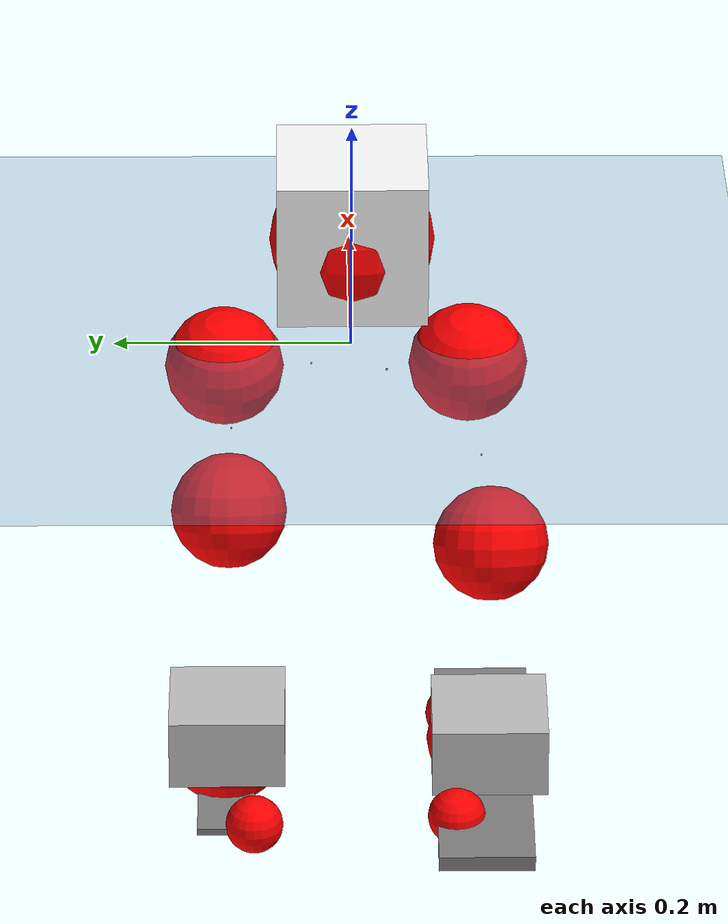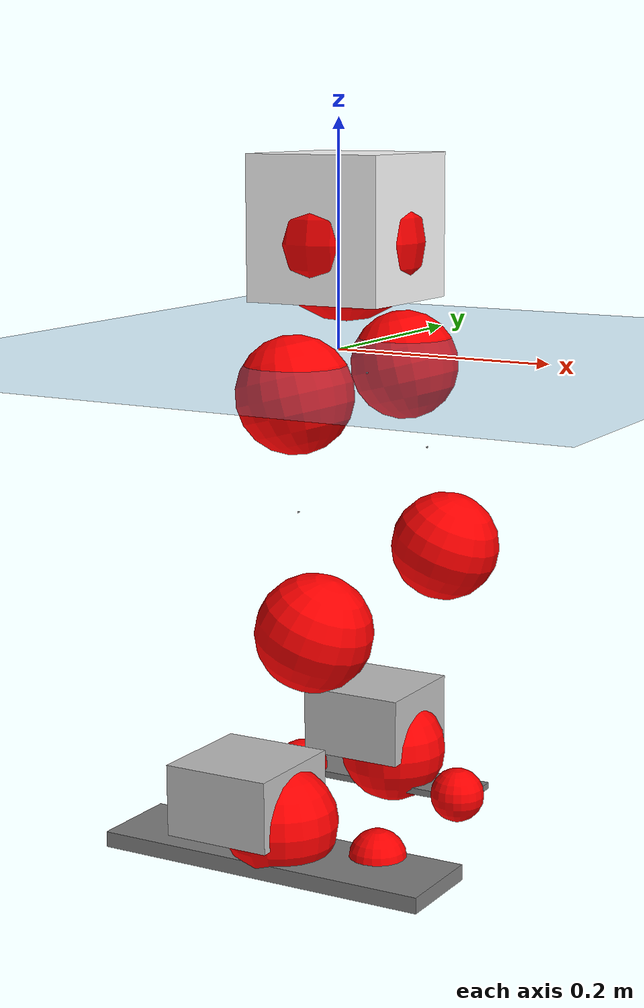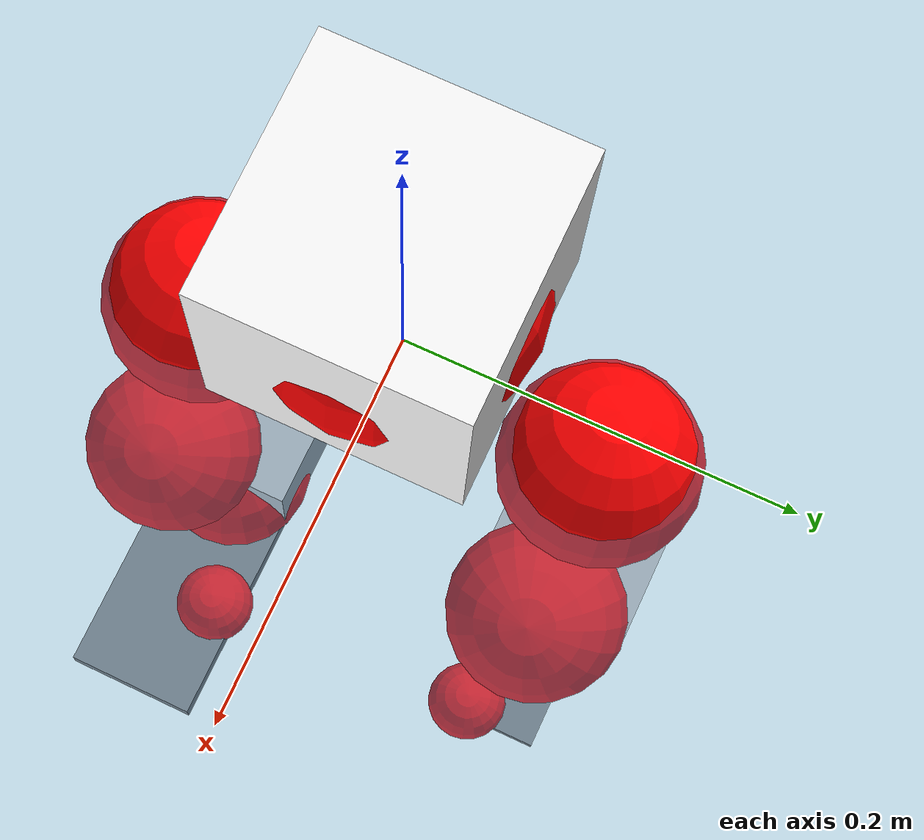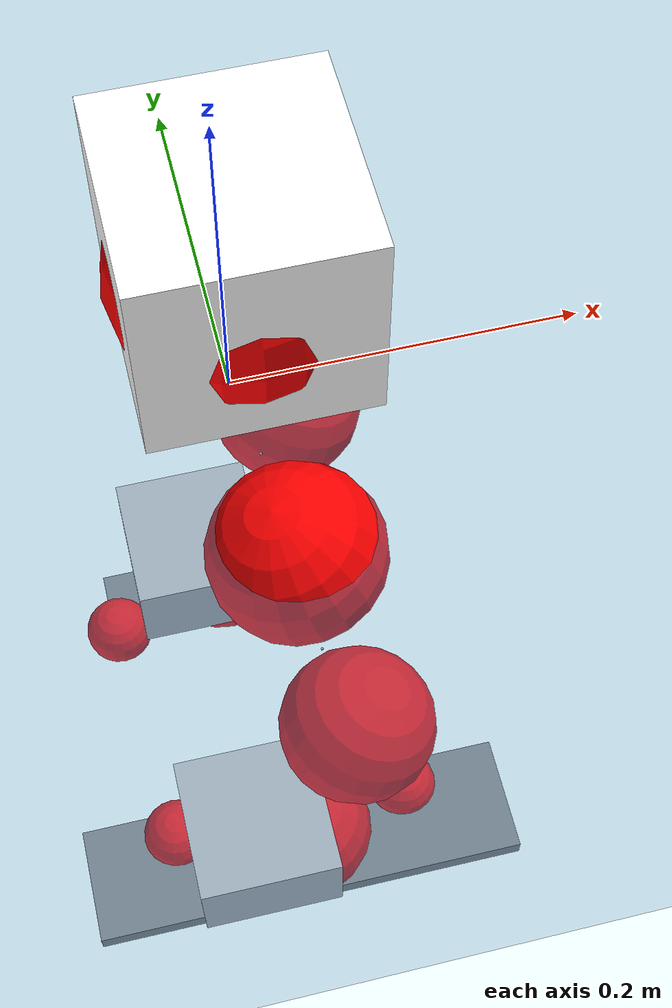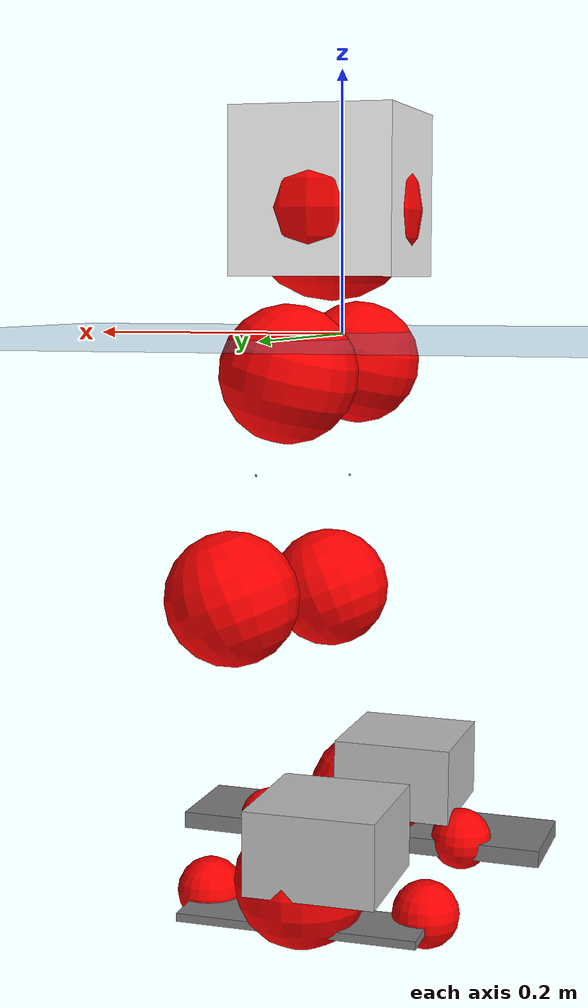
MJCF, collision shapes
<mujoco model="pi_12dof_release_v1">
  <compiler angle="radian" assetdir="assets" balanceinertia="true" inertiafromgeom="false"/>

  <option timestep="0.005" density="1.2" viscosity="2e-05"/>

  <size nkey="1"/>

  <visual>
    <quality shadowsize="8192"/>
    <map shadowclip="0.5"/>
  </visual>

  <default>
    <default class="/">
      <joint armature="0.01" damping="0.01" frictionloss="0.01"/>
      <geom contype="0" conaffinity="0" group="1" solref="-1000 -80"/>
      <site size="0.01 0.005 0.005" group="5"/>
      <general forcelimited="true" biastype="affine" gainprm="20" biasprm="0 -20 -0.5"/>
      <default class="foot">
        <geom size="0.0845 0.036 0.005" type="box" condim="6" group="4" priority="1" friction="0.9 0.2 0.2" solimp="0.015 1 0.005"/>
      </default>
      <default class="reward_collision_sphere">
        <geom group="5" rgba="1 0 0 1"/>
      </default>
    </default>
  </default>

  <asset>
    <texture type="skybox" colorspace="auto" name="//unnamed_texture_0" builtin="gradient" rgb1="0.95 0.95 0.95" rgb2="0.95 0.95 0.95" width="100" height="600"/>
    <texture type="2d" colorspace="auto" name="texplane" builtin="checker" rgb1="0.345 0.575 0.748" rgb2="0.345 0.575 0.748" markrgb="1 1 1" width="512" height="512"/>
    <material name="MatPlane" class="/" texture="texplane" texuniform="true" texrepeat="2 2" specular="0.9"/>
    <mesh name="baselink_1" class="/" file="baselink_1.STL"/>
    <mesh name="r_hip_pitch_link" class="/" file="r_hip_pitch_link.STL"/>
    <mesh name="r_hip_roll_link" class="/" file="r_hip_roll_link.STL"/>
    <mesh name="r_thigh_link" class="/" file="r_thigh_link.STL"/>
    <mesh name="r_calf_link" class="/" file="r_calf_link.STL"/>
    <mesh name="r_ankle_pitch_link" class="/" file="r_ankle_pitch_link.STL"/>
    <mesh name="r_ankle_roll_link" class="/" file="r_ankle_roll_link.STL"/>
    <mesh name="l_hip_pitch_link" class="/" file="l_hip_pitch_link.STL"/>
    <mesh name="l_hip_roll_link" class="/" file="l_hip_roll_link.STL"/>
    <mesh name="l_thigh_link" class="/" file="l_thigh_link.STL"/>
    <mesh name="l_calf_link" class="/" file="l_calf_link.STL"/>
    <mesh name="l_ankle_pitch_link" class="/" file="l_ankle_pitch_link.STL"/>
    <mesh name="l_ankle_roll_link" class="/" file="l_ankle_roll_link.STL"/>
  </asset>

  <worldbody>
    <geom name="floor" class="/" size="100 100 0.125" type="plane" group="0" material="MatPlane"/>
    <light name="toplight_shadow" class="/" pos="0 0 5" dir="0.0990148 0.0990148 -0.990148" type="directional" ambient="0.04 0.04 0.04" diffuse="0.55 0.55 0.55" specular="0.12 0.12 0.12"/>
    <light name="toplight_fill" class="/" pos="0 0 5" dir="0.0990148 0.0990148 -0.990148" type="directional" castshadow="false" ambient="0.04 0.04 0.04" diffuse="0.3 0.3 0.3" specular="0.08 0.08 0.08"/>
    <body name="trunk" pos="0.00843166 -0.000815426 0.00585627" quat="0.999993 -0.00254284 -0.00242088 -0.00119324">
      <inertial pos="0.00909728 -0.00650203 0.052217" quat="0.715306 0.010813 -0.0304268 0.698065" mass="4.18842" diaginertia="0.024265 0.0276226 0.0107698"/>
      <joint name="//unnamed_joint_0" type="free"/>
      <geom name="//unnamed_geom_1" class="/" type="mesh" density="0" rgba="1 1 1 1" mesh="baselink_1"/>
      <geom name="//unnamed_geom_2" class="/" size="0.0628406 0.0628406 0.0628406" pos="0 0 0.101261" type="box" rgba="1 1 1 1"/>
      <geom name="//unnamed_geom_3" class="reward_collision_sphere" size="0.0691246" pos="0 0 0.088603"/>
      <site name="imu" class="/" pos="-0.0322858 0.0683373 0.0200223" size="0.0125681"/>
      <camera name="track" class="/" pos="0 -2.50439 0" quat="0.707107 0.707107 0 0" mode="trackcom"/>
      <camera name="ego_camera" class="/" pos="0.0939362 0 0.227836" quat="-0.5 -0.5 0.5 0.5"/>
      <body name="r_hip_pitch_link" pos="0.00180458 -0.0293124 -0.0365415" quat="0.991749 -0.00219859 -0.128067 -0.00523038">
        <inertial pos="0.00711994 -0.0695788 0.00262974" quat="-0.0559451 0.714091 -0.00964223 0.697747" mass="0.624206" diaginertia="0.000285522 0.000261352 0.000212565"/>
        <joint name="r_hip_pitch_joint" class="/" pos="0 0 0" axis="-0.00258237 -0.999764 0.0215529" stiffness="0.0561688" range="-1.71319 1.26153" armature="0.0165378" damping="0.016699" frictionloss="0.0107323"/>
        <geom name="//unnamed_geom_4" class="/" type="mesh" density="0" rgba="0.75294 0.75294 0.75294 1" mesh="r_hip_pitch_link"/>
        <geom name="//unnamed_geom_5" class="/" size="0.000628406 0.000628406 0.000628406" type="box" rgba="0.75294 0.75294 0.75294 1"/>
        <body name="r_hip_roll_link" pos="0.00598475 -0.0688114 0.0026145" quat="1 0.000125721 0.000304115 0.000532134">
          <inertial pos="-0.00201107 0.0120089 -0.0632826" quat="0.70291 -0.0748178 -0.069246 0.703935" mass="0.79123" diaginertia="0.00102294 0.00093266 0.000412742"/>
          <joint name="r_hip_roll_joint" class="/" pos="0 0 0" axis="-0.999096 -0.0239842 -0.0350982" stiffness="0.0332747" range="-0.117477 0.266676" armature="0.00998808" damping="0.0261564" frictionloss="0.0147932"/>
          <geom name="//unnamed_geom_6" class="/" type="mesh" density="0" rgba="0.75294 0.75294 0.75294 1" mesh="r_hip_roll_link"/>
          <geom name="//unnamed_geom_7" class="/" size="0.000628406 0.000628406 0.000628406" type="box" rgba="0.75294 0.75294 0.75294 1"/>
          <geom name="//unnamed_geom_8" class="reward_collision_sphere" size="0.0502725"/>
          <body name="r_thigh_link" pos="-0.014071 -0.0124551 -0.0957119" quat="1 0.000236224 -8.77674e-05 0.000173482">
            <inertial pos="0.00324539 0.00792382 -0.0681812" quat="0.738252 0.674504 0.00355786 0.00407353" mass="0.194354" diaginertia="0.000351704 0.000304154 0.00019383"/>
            <joint name="r_thigh_joint" class="/" pos="0 0 0" axis="-0.0243447 0.0285938 -0.999295" range="-0.361958 0.499" armature="0.0115378" damping="0.0476432" frictionloss="0.0212012"/>
            <geom name="//unnamed_geom_9" class="/" type="mesh" density="0" rgba="0.75294 0.75294 0.75294 1" mesh="r_thigh_link"/>
            <geom name="//unnamed_geom_10" class="/" size="0.000628406 0.000628406 0.000628406" type="box" rgba="0.75294 0.75294 0.75294 1"/>
            <body name="r_calf_link" pos="-0.00543859 -0.0092623 -0.100997" quat="0.947623 -0.000128152 0.319392 4.95345e-05">
              <inertial pos="0.00231915 0.00655966 -0.0877413" quat="0.998344 0.0523967 0.00931602 0.0218591" mass="1.34735" diaginertia="0.00988834 0.00858739 0.000471522"/>
              <joint name="r_calf_joint" class="/" pos="0 0 0" axis="-0.000888054 -0.999962 0.00863297" stiffness="0.0561217" range="-1.88139 0.645674" armature="0.0189079" damping="0.00109913" frictionloss="0.0117891"/>
              <geom name="//unnamed_geom_11" class="/" type="mesh" density="0" rgba="0.75294 0.75294 0.75294 1" mesh="r_calf_link"/>
              <geom name="//unnamed_geom_12" class="/" size="0.000628406 0.000628406 0.000628406" type="box" rgba="0.75294 0.75294 0.75294 1"/>
              <geom name="//unnamed_geom_13" class="reward_collision_sphere" size="0.0502725"/>
              <body name="r_ankle_pitch_link" pos="-0.00549374 0.00178077 -0.167497" quat="0.979911 -0.00133716 -0.199428 0.000635176">
                <inertial pos="0.003627 0.00394675 0.0123892" quat="0.0131784 0.676195 0.0527323 0.734715" mass="0.284134" diaginertia="0.000866118 0.000580367 0.000330868"/>
                <joint name="r_ankle_pitch_joint" class="/" pos="0 0 0" axis="0.0192626 -0.999786 0.00756789" range="-1.2719 0.239042" armature="0.0127554" damping="0.0107076" frictionloss="0.00583924"/>
                <geom name="//unnamed_geom_14" class="/" type="mesh" density="0" rgba="0.75294 0.75294 0.75294 1" mesh="r_ankle_pitch_link"/>
                <geom name="//unnamed_geom_15" class="/" size="0.0490156 0.0502725 0.0314203" type="box" rgba="0.75294 0.75294 0.75294 1"/>
                <body name="r_ankle_roll_link" pos="0.0942261 0.00399636 0.0026716" quat="1 0.000882179 -0.000243273 -9.19536e-05">
                  <inertial pos="-0.0315174 0.00166093 -0.0323278" quat="0.570406 0.42898 0.451808 0.53524" mass="1.35024" diaginertia="0.00385936 0.00310308 0.00123565"/>
                  <joint name="r_ankle_roll_joint" class="/" pos="0 0 0" axis="-0.998369 0.039666 -0.0410642" range="-0.307317 0.366344" armature="0.020667" damping="0" frictionloss="0.0166046"/>
                  <geom name="//unnamed_geom_16" class="/" type="mesh" density="0" rgba="0.75294 0.75294 0.75294 1" mesh="r_ankle_roll_link"/>
                  <geom name="//unnamed_geom_17" class="/" type="mesh" rgba="0.75294 0.75294 0.75294 1" mesh="r_ankle_roll_link"/>
                  <geom name="right_foot" class="foot" size="0.154805 0.0414867 0.00694399" pos="-0.0638766 0 -0.0556933"/>
                  <geom name="//unnamed_geom_19" class="reward_collision_sphere" size="0.0502725" pos="-0.0626242 0 -0.0253151"/>
                  <geom name="//unnamed_geom_20" class="reward_collision_sphere" size="0.0251362" pos="0.0187872 0.0250439 -0.0506303"/>
                  <geom name="//unnamed_geom_21" class="reward_collision_sphere" size="0.0251362" pos="-0.150298 0.0250439 -0.0506303"/>
                  <site name="right_foot" class="foot" pos="-0.0638766 0 -0.0556933" size="0.0125681"/>
                </body>
              </body>
            </body>
          </body>
        </body>
      </body>
      <body name="l_hip_pitch_link" pos="0.00117498 0.0347316 -0.0301346" quat="0.992247 0.0011237 -0.124278 8.13496e-05">
        <inertial pos="0.00156945 0.0677113 0.0111346" quat="-0.040946 0.705185 0.0273263 0.707313" mass="0.666146" diaginertia="0.000344903 0.000357443 0.00033007"/>
        <joint name="l_hip_pitch_joint" class="/" pos="0 0 0" axis="-0.0304752 0.999457 -0.0124917" range="-1.42437 1.75978" armature="0.00653654" damping="0.0163961" frictionloss="0.0131723"/>
        <geom name="//unnamed_geom_22" class="/" type="mesh" density="0" rgba="0.75294 0.75294 0.75294 1" mesh="l_hip_pitch_link"/>
        <geom name="//unnamed_geom_23" class="/" size="0.000628406 0.000628406 0.000628406" type="box" rgba="0.75294 0.75294 0.75294 1"/>
        <body name="l_hip_roll_link" pos="-0.00114099 0.0735649 -0.000924396" quat="1 -5.28383e-06 -0.000729138 0.000498312">
          <inertial pos="0.00844371 -0.000706961 -0.0634008" quat="0.661534 -0.0566311 -0.0827554 0.74318" mass="0.738399" diaginertia="0.00111217 0.000815298 0.000449287"/>
          <joint name="l_hip_roll_joint" class="/" pos="0 0 0" axis="-0.999958 0.00746874 -0.00538871" range="-0.258508 -0.070901" armature="0.0166851" damping="0.0740902" frictionloss="0.0124632"/>
          <geom name="//unnamed_geom_24" class="/" type="mesh" density="0" rgba="0.75294 0.75294 0.75294 1" mesh="l_hip_roll_link"/>
          <geom name="//unnamed_geom_25" class="/" size="0.000628406 0.000628406 0.000628406" type="box" rgba="0.75294 0.75294 0.75294 1"/>
          <geom name="//unnamed_geom_26" class="reward_collision_sphere" size="0.0502725"/>
          <body name="l_thigh_link" pos="0.00694948 -0.00492232 -0.0787925" quat="1 -5.88564e-05 -0.000392115 5.55466e-05">
            <inertial pos="-0.00661539 0.00557458 -0.0679922" quat="0.661241 0.748837 -0.00754337 0.0441205" mass="0.252903" diaginertia="0.000385905 0.000279702 0.000200549"/>
            <joint name="l_thigh_joint" class="/" pos="0 0 0" axis="-0.00788077 -0.00479132 -0.999957" stiffness="0.0648078" range="-0.58105 0.422963" armature="0.0132032" damping="0" frictionloss="0.0128974"/>
            <geom name="//unnamed_geom_27" class="/" type="mesh" density="0" rgba="0.75294 0.75294 0.75294 1" mesh="l_thigh_link"/>
            <geom name="//unnamed_geom_28" class="/" size="0.000628406 0.000628406 0.000628406" type="box" rgba="0.75294 0.75294 0.75294 1"/>
            <body name="l_calf_link" pos="-0.00558949 0.00311684 -0.0931547" quat="0.947357 -0.000308521 0.320174 -0.00189908">
              <inertial pos="0.00105012 -0.00630529 -0.0798784" quat="0.99998 0.00268912 -0.00218052 0.00535041" mass="1.76027" diaginertia="0.0128161 0.01278 0.000662527"/>
              <joint name="l_calf_joint" class="/" pos="0 0 0" axis="-0.00181657 0.999998 4.92348e-05" stiffness="0.000970782" range="-0.915826 1.4231" armature="0.0125721" damping="0" frictionloss="0.0102482"/>
              <geom name="//unnamed_geom_29" class="/" type="mesh" density="0" rgba="0.75294 0.75294 0.75294 1" mesh="l_calf_link"/>
              <geom name="//unnamed_geom_30" class="/" size="0.000628406 0.000628406 0.000628406" type="box" rgba="0.75294 0.75294 0.75294 1"/>
              <geom name="//unnamed_geom_31" class="reward_collision_sphere" size="0.0502725"/>
              <body name="l_ankle_pitch_link" pos="-0.00145179 0.00243964 -0.189456" quat="0.980069 -4.43008e-07 -0.198658 6.5465e-06">
                <inertial pos="0.0130694 -0.00947611 -0.00132732" quat="-0.00180893 0.706861 -0.00190319 0.707347" mass="0.441362" diaginertia="0.000996617 0.000768433 0.000384234"/>
                <joint name="l_ankle_pitch_joint" class="/" pos="0 0 0" axis="-0.00269551 0.999995 -0.00153677" range="-0.275439 1.3344" armature="0.0181112" damping="0.00350268" frictionloss="0.0112743"/>
                <geom name="//unnamed_geom_32" class="/" type="mesh" density="0" rgba="0.75294 0.75294 0.75294 1" mesh="l_ankle_pitch_link"/>
                <geom name="//unnamed_geom_33" class="/" size="0.0490156 0.0502725 0.0314203" type="box" rgba="0.75294 0.75294 0.75294 1"/>
                <body name="l_ankle_roll_link" pos="0.0818533 0.00140407 -0.00674701" quat="1 -0.000383583 8.86724e-05 -0.000371118">
                  <inertial pos="-0.0338621 -0.00202104 -0.020092" quat="0.556996 0.429527 0.43775 0.560033" mass="1.25755" diaginertia="0.00392223 0.00348077 0.00101732"/>
                  <joint name="l_ankle_roll_joint" class="/" pos="0 0 0" axis="-0.999868 -0.014265 0.00781288" range="-0.225188 0.151901" armature="0.00703547" damping="0" frictionloss="0.0128137"/>
                  <geom name="//unnamed_geom_34" class="/" type="mesh" density="0" rgba="0.75294 0.75294 0.75294 1" mesh="l_ankle_roll_link"/>
                  <geom name="//unnamed_geom_35" class="/" type="mesh" rgba="0.75294 0.75294 0.75294 1" mesh="l_ankle_roll_link"/>
                  <geom name="left_foot" class="foot" size="0.0911643 0.0247126 0.00312799" pos="-0.0638766 0 -0.0556933"/>
                  <geom name="//unnamed_geom_37" class="reward_collision_sphere" size="0.0502725" pos="-0.0626242 0 -0.0253151"/>
                  <geom name="//unnamed_geom_38" class="reward_collision_sphere" size="0.0251362" pos="0.0187872 -0.0250439 -0.0506303"/>
                  <geom name="//unnamed_geom_39" class="reward_collision_sphere" size="0.0251362" pos="-0.150298 -0.0250439 -0.0506303"/>
                  <site name="left_foot" class="foot" pos="-0.0638766 0 -0.0556933" size="0.0125681"/>
                </body>
              </body>
            </body>
          </body>
        </body>
      </body>
    </body>
  </worldbody>

  <contact>
    <pair class="/" geom1="floor" geom2="right_foot" name="//unnamed_contact_1"/>
    <pair class="/" geom1="floor" geom2="left_foot" name="//unnamed_contact_0"/>
  </contact>

  <actuator>
    <general name="r_hip_pitch_joint" class="/" joint="r_hip_pitch_joint" forcerange="-26.2082 26.2082" gainprm="24.2936" biasprm="0 -24.2936 -0.699926"/>
    <general name="r_hip_roll_joint" class="/" joint="r_hip_roll_joint" forcerange="-37.2434 37.2434" gainprm="24.2936" biasprm="0 -24.2936 -0.699926"/>
    <general name="r_thigh_joint" class="/" joint="r_thigh_joint" forcerange="-20.4203 20.4203" gainprm="24.2936" biasprm="0 -24.2936 -0.699926"/>
    <general name="r_calf_joint" class="/" joint="r_calf_joint" forcerange="-29.8187 29.8187" gainprm="24.2936" biasprm="0 -24.2936 -0.699926"/>
    <general name="r_ankle_pitch_joint" class="/" joint="r_ankle_pitch_joint" forcerange="-22.3282 22.3282" gainprm="24.2936" biasprm="0 -24.2936 -0.699926"/>
    <general name="r_ankle_roll_joint" class="/" joint="r_ankle_roll_joint" forcerange="-20.0849 20.0849" gainprm="24.2936" biasprm="0 -24.2936 -0.699926"/>
    <general name="l_hip_pitch_joint" class="/" joint="l_hip_pitch_joint" forcerange="-25.1481 25.1481" gainprm="24.2936" biasprm="0 -24.2936 -0.699926"/>
    <general name="l_hip_roll_joint" class="/" joint="l_hip_roll_joint" forcerange="-16.146 16.146" gainprm="24.2936" biasprm="0 -24.2936 -0.699926"/>
    <general name="l_thigh_joint" class="/" joint="l_thigh_joint" forcerange="-37.7498 37.7498" gainprm="24.2936" biasprm="0 -24.2936 -0.699926"/>
    <general name="l_calf_joint" class="/" joint="l_calf_joint" forcerange="-26.5873 26.5873" gainprm="24.2936" biasprm="0 -24.2936 -0.699926"/>
    <general name="l_ankle_pitch_joint" class="/" joint="l_ankle_pitch_joint" forcerange="-19.4012 19.4012" gainprm="24.2936" biasprm="0 -24.2936 -0.699926"/>
    <general name="l_ankle_roll_joint" class="/" joint="l_ankle_roll_joint" forcerange="-12.4838 12.4838" gainprm="24.2936" biasprm="0 -24.2936 -0.699926"/>
  </actuator>

  <sensor>
    <gyro site="imu" name="imu_angular_velocity"/>
    <velocimeter site="imu" name="imu_linear_velocity"/>
    <framelinvel objtype="site" objname="left_foot" name="left_foot_global_linear_velocity"/>
    <framelinvel objtype="site" objname="right_foot" name="right_foot_global_linear_velocity"/>
  </sensor>

  <keyframe>
    <key name="home" qpos="0 0 0.291 1 0 0 0 0.4 0 0 -0.8 0.4 0 -0.4 0 0 0.8 -0.4 0"/>
  </keyframe>
</mujoco>
